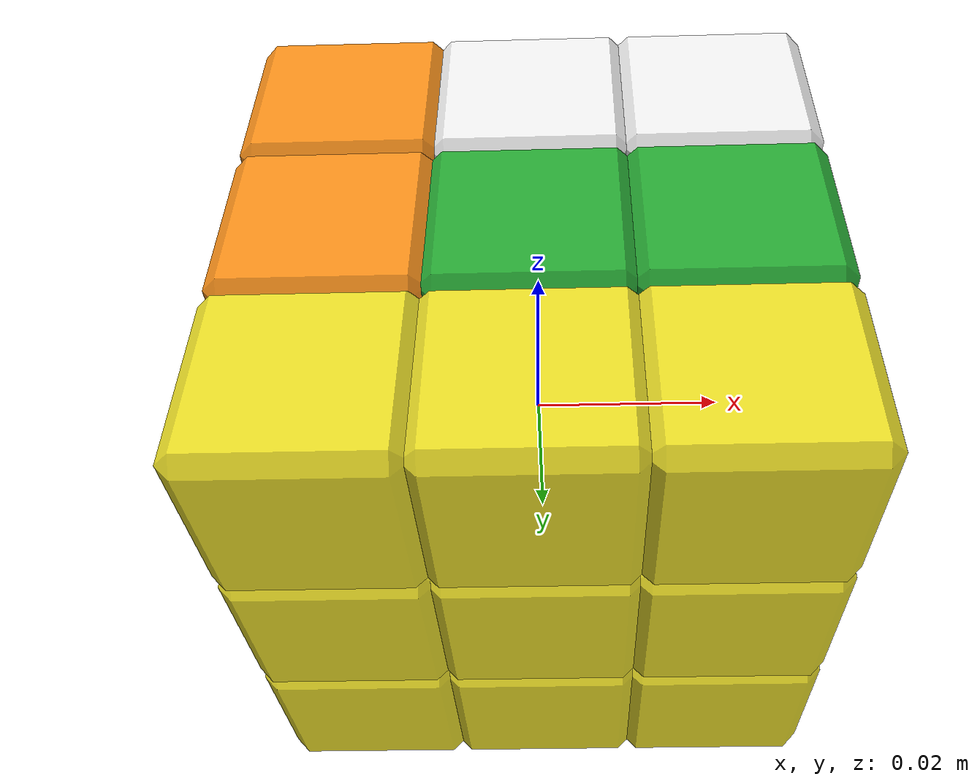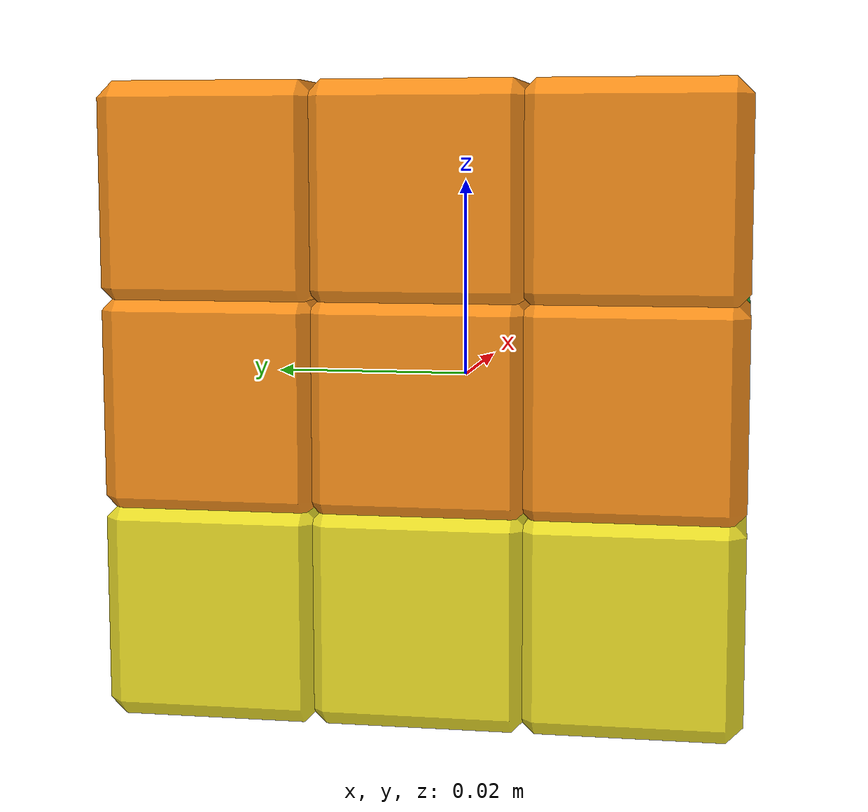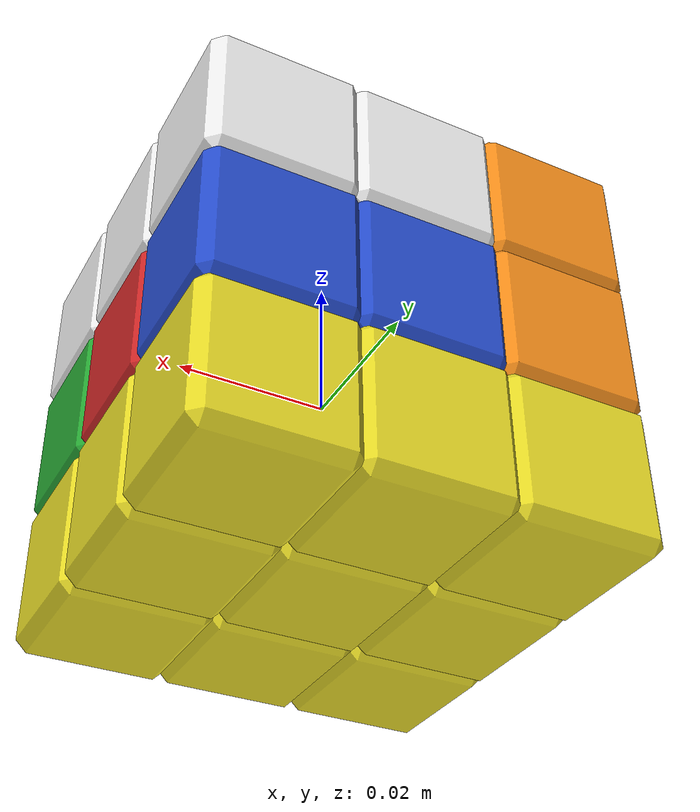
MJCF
<mujoco model="Cube 3x3x3">
  <compiler autolimits="true" angle="radian" texturedir="assets"/>
  <option timestep="0.01"/>
  <size memory="600K"/>
  <visual>
    <global azimuth="180" elevation="-20"/>
    <headlight ambient="0.3 0.3 0.3" diffuse="0.6 0.6 0.6" specular="0 0 0"/>
  </visual>
  <statistic extent="0.1"/>
  <default>
    <motor ctrlrange="-0.05 0.05"/>
    <default class="cubelet">
      <joint type="ball" armature="0.0001" damping="0.0005" frictionloss="0.0005"/>
      <geom type="mesh" condim="1" mass="0.00263462" margin="-0.001" mesh="cubelet"/>
    </default>
  </default>
  <asset>
    <texture type="skybox" builtin="gradient" rgb1="0.2 0.2 0.2" rgb2="0 0 0" width="512" height="512"/>
    <texture file="white.png" gridsize="3 4" gridlayout=".....F......" rgb1="0 0 0"/>
    <texture file="yellow.png" gridsize="3 4" gridlayout=".....B......" rgb1="0 0 0"/>
    <texture file="red.png" gridsize="3 4" gridlayout=".....D......" rgb1="0 0 0"/>
    <texture file="orange.png" gridsize="3 4" gridlayout=".....U......" rgb1="0 0 0"/>
    <texture file="blue.png" gridsize="3 4" gridlayout=".....R......" rgb1="0 0 0"/>
    <texture file="green.png" gridsize="3 4" gridlayout=".....L......" rgb1="0 0 0"/>
    <texture file="red_white.png" gridsize="3 4" gridlayout=".....DF....." rgb1="0 0 0"/>
    <texture file="orange_white.png" gridsize="3 4" gridlayout=".....UF....." rgb1="0 0 0"/>
    <texture file="blue_white.png" gridsize="3 4" gridlayout=".....RF....." rgb1="0 0 0"/>
    <texture file="green_white.png" gridsize="3 4" gridlayout=".....LF....." rgb1="0 0 0"/>
    <texture file="red_yellow.png" gridsize="3 4" gridlayout=".....DB....." rgb1="0 0 0"/>
    <texture file="orange_yellow.png" gridsize="3 4" gridlayout=".....UB....." rgb1="0 0 0"/>
    <texture file="blue_yellow.png" gridsize="3 4" gridlayout=".....RB....." rgb1="0 0 0"/>
    <texture file="green_yellow.png" gridsize="3 4" gridlayout=".....LB....." rgb1="0 0 0"/>
    <texture file="orange_red.png" gridsize="3 4" gridlayout=".....UD....." rgb1="0 0 0"/>
    <texture file="blue_red.png" gridsize="3 4" gridlayout=".....RD....." rgb1="0 0 0"/>
    <texture file="green_red.png" gridsize="3 4" gridlayout=".....LD....." rgb1="0 0 0"/>
    <texture file="blue_orange.png" gridsize="3 4" gridlayout=".....RU....." rgb1="0 0 0"/>
    <texture file="green_orange.png" gridsize="3 4" gridlayout=".....LU....." rgb1="0 0 0"/>
    <texture file="blue_red_white.png" gridsize="3 4" gridlayout=".....RDF...." rgb1="0 0 0"/>
    <texture file="green_red_white.png" gridsize="3 4" gridlayout=".....LDF...." rgb1="0 0 0"/>
    <texture file="blue_orange_white.png" gridsize="3 4" gridlayout=".....RUF...." rgb1="0 0 0"/>
    <texture file="green_orange_white.png" gridsize="3 4" gridlayout=".....LUF...." rgb1="0 0 0"/>
    <texture file="blue_red_yellow.png" gridsize="3 4" gridlayout=".....RDB...." rgb1="0 0 0"/>
    <texture file="green_red_yellow.png" gridsize="3 4" gridlayout=".....LDB...." rgb1="0 0 0"/>
    <texture file="blue_orange_yellow.png" gridsize="3 4" gridlayout=".....RUB...." rgb1="0 0 0"/>
    <texture file="green_orange_yellow.png" gridsize="3 4" gridlayout=".....LUB...." rgb1="0 0 0"/>
    <material name="white" texture="white"/>
    <material name="yellow" texture="yellow"/>
    <material name="red" texture="red"/>
    <material name="orange" texture="orange"/>
    <material name="blue" texture="blue"/>
    <material name="green" texture="green"/>
    <material name="red_white" texture="red_white"/>
    <material name="orange_white" texture="orange_white"/>
    <material name="blue_white" texture="blue_white"/>
    <material name="green_white" texture="green_white"/>
    <material name="red_yellow" texture="red_yellow"/>
    <material name="orange_yellow" texture="orange_yellow"/>
    <material name="blue_yellow" texture="blue_yellow"/>
    <material name="green_yellow" texture="green_yellow"/>
    <material name="orange_red" texture="orange_red"/>
    <material name="blue_red" texture="blue_red"/>
    <material name="green_red" texture="green_red"/>
    <material name="blue_orange" texture="blue_orange"/>
    <material name="green_orange" texture="green_orange"/>
    <material name="blue_red_white" texture="blue_red_white"/>
    <material name="green_red_white" texture="green_red_white"/>
    <material name="blue_orange_white" texture="blue_orange_white"/>
    <material name="green_orange_white" texture="green_orange_white"/>
    <material name="blue_red_yellow" texture="blue_red_yellow"/>
    <material name="green_red_yellow" texture="green_red_yellow"/>
    <material name="blue_orange_yellow" texture="blue_orange_yellow"/>
    <material name="green_orange_yellow" texture="green_orange_yellow"/>
    <mesh name="cubelet" vertex="0.0085 -0.01 0.0085 -0.0085 -0.01 -0.0085 0.0085 -0.01 -0.0085 0.01 0.0085 0.0085 0.01 -0.0085 -0.0085 0.01 0.0085 -0.0085 -0.0085 0.0085 0.01 0.0085 -0.0085 0.01 0.0085 0.0085 0.01 -0.01 -0.0085 0.0085 -0.01 0.0085 -0.0085 -0.01 -0.0085 -0.0085 -0.0085 0.01 0.0085 0.0085 0.01 -0.0085 -0.0085 0.01 -0.0085 -0.0085 -0.0085 -0.01 -0.0085 -0.01 0.0085 -0.0085 -0.0085 0.01 -0.0085 0.0085 -0.01 -0.01 0.0085 0.0085 0.0085 -0.0085 -0.01 0.01 -0.0085 0.0085 0.0085 0.0085 -0.01 0.0085 0.01 0.0085"/>
  </asset>
  <worldbody>
    <light pos="0 0 1" dir="0 0 -1"/>
    <body name="core" childclass="cubelet">
      <geom contype="0" conaffinity="0" mass="1e-06"/>
      <body name="pX">
        <joint name="pX" type="hinge" axis="1 0 0"/>
        <body name="mesh_pX" pos="0.01905 0 0">
          <geom material="red"/>
        </body>
      </body>
      <body name="nX">
        <joint name="nX" type="hinge" axis="-1 0 0"/>
        <body name="mesh_nX" pos="-0.01905 0 0">
          <geom material="orange"/>
        </body>
      </body>
      <body name="pY">
        <joint name="pY" type="hinge" axis="0 1 0"/>
        <body name="mesh_pY" pos="0 0.01905 0">
          <geom material="blue"/>
        </body>
      </body>
      <body name="nY">
        <joint name="nY" type="hinge" axis="0 -1 0"/>
        <body name="mesh_nY" pos="0 -0.01905 0">
          <geom material="green"/>
        </body>
      </body>
      <body name="pZ">
        <joint name="pZ" type="hinge" axis="0 0 1"/>
        <body name="mesh_pZ" pos="0 0 0.01905">
          <geom material="white"/>
        </body>
      </body>
      <body name="nZ">
        <joint name="nZ" type="hinge" axis="0 0 -1"/>
        <body name="mesh_nZ" pos="0 0 -0.01905">
          <geom material="yellow"/>
        </body>
      </body>
      <body name="pX_pY">
        <joint name="pX_pY"/>
        <body name="mesh_pX_pY" pos="0.01905 0.01905 0">
          <geom material="blue_red"/>
        </body>
      </body>
      <body name="nY_pX">
        <joint name="nY_pX"/>
        <body name="mesh_nY_pX" pos="0.01905 -0.01905 0">
          <geom material="green_red"/>
        </body>
      </body>
      <body name="pX_pZ">
        <joint name="pX_pZ"/>
        <body name="mesh_pX_pZ" pos="0.01905 0 0.01905">
          <geom material="red_white"/>
        </body>
      </body>
      <body name="nZ_pX">
        <joint name="nZ_pX"/>
        <body name="mesh_nZ_pX" pos="0.01905 0 -0.01905">
          <geom material="red_yellow"/>
        </body>
      </body>
      <body name="nX_pY">
        <joint name="nX_pY"/>
        <body name="mesh_nX_pY" pos="-0.01905 0.01905 0">
          <geom material="blue_orange"/>
        </body>
      </body>
      <body name="nX_nY">
        <joint name="nX_nY"/>
        <body name="mesh_nX_nY" pos="-0.01905 -0.01905 0">
          <geom material="green_orange"/>
        </body>
      </body>
      <body name="nX_pZ">
        <joint name="nX_pZ"/>
        <body name="mesh_nX_pZ" pos="-0.01905 0 0.01905">
          <geom material="orange_white"/>
        </body>
      </body>
      <body name="nX_nZ">
        <joint name="nX_nZ"/>
        <body name="mesh_nX_nZ" pos="-0.01905 0 -0.01905">
          <geom material="orange_yellow"/>
        </body>
      </body>
      <body name="pY_pZ">
        <joint name="pY_pZ"/>
        <body name="mesh_pY_pZ" pos="0 0.01905 0.01905">
          <geom material="blue_white"/>
        </body>
      </body>
      <body name="nZ_pY">
        <joint name="nZ_pY"/>
        <body name="mesh_nZ_pY" pos="0 0.01905 -0.01905">
          <geom material="blue_yellow"/>
        </body>
      </body>
      <body name="nY_pZ">
        <joint name="nY_pZ"/>
        <body name="mesh_nY_pZ" pos="0 -0.01905 0.01905">
          <geom material="green_white"/>
        </body>
      </body>
      <body name="nY_nZ">
        <joint name="nY_nZ"/>
        <body name="mesh_nY_nZ" pos="0 -0.01905 -0.01905">
          <geom material="green_yellow"/>
        </body>
      </body>
      <body name="pX_pY_pZ">
        <joint name="pX_pY_pZ"/>
        <body name="mesh_pX_pY_pZ" pos="0.01905 0.01905 0.01905">
          <geom material="blue_red_white"/>
        </body>
      </body>
      <body name="nZ_pX_pY">
        <joint name="nZ_pX_pY"/>
        <body name="mesh_nZ_pX_pY" pos="0.01905 0.01905 -0.01905">
          <geom material="blue_red_yellow"/>
        </body>
      </body>
      <body name="nY_pX_pZ">
        <joint name="nY_pX_pZ"/>
        <body name="mesh_nY_pX_pZ" pos="0.01905 -0.01905 0.01905">
          <geom material="green_red_white"/>
        </body>
      </body>
      <body name="nY_nZ_pX">
        <joint name="nY_nZ_pX"/>
        <body name="mesh_nY_nZ_pX" pos="0.01905 -0.01905 -0.01905">
          <geom material="green_red_yellow"/>
        </body>
      </body>
      <body name="nX_pY_pZ">
        <joint name="nX_pY_pZ"/>
        <body name="mesh_nX_pY_pZ" pos="-0.01905 0.01905 0.01905">
          <geom material="blue_orange_white"/>
        </body>
      </body>
      <body name="nX_nZ_pY">
        <joint name="nX_nZ_pY"/>
        <body name="mesh_nX_nZ_pY" pos="-0.01905 0.01905 -0.01905">
          <geom material="blue_orange_yellow"/>
        </body>
      </body>
      <body name="nX_nY_pZ">
        <joint name="nX_nY_pZ"/>
        <body name="mesh_nX_nY_pZ" pos="-0.01905 -0.01905 0.01905">
          <geom material="green_orange_white"/>
        </body>
      </body>
      <body name="nX_nY_nZ">
        <joint name="nX_nY_nZ"/>
        <body name="mesh_nX_nY_nZ" pos="-0.01905 -0.01905 -0.01905">
          <geom material="green_orange_yellow"/>
        </body>
      </body>
    </body>
  </worldbody>
  <actuator>
    <motor name="red" joint="pX"/>
    <motor name="orange" joint="nX"/>
    <motor name="blue" joint="pY"/>
    <motor name="green" joint="nY"/>
    <motor name="white" joint="pZ"/>
    <motor name="yellow" joint="nZ"/>
  </actuator>
</mujoco>
